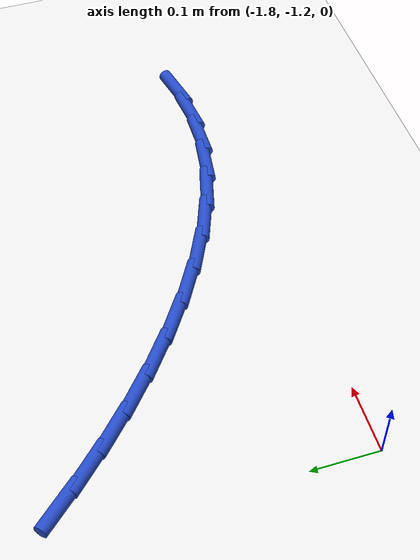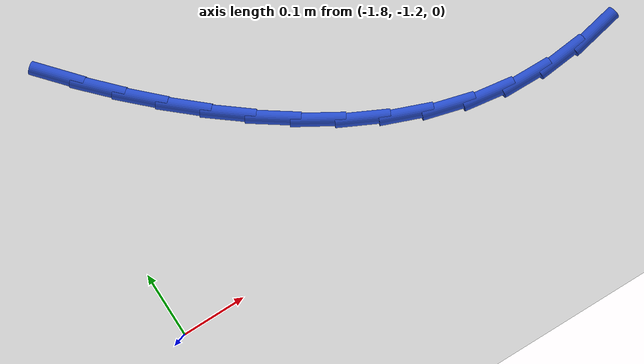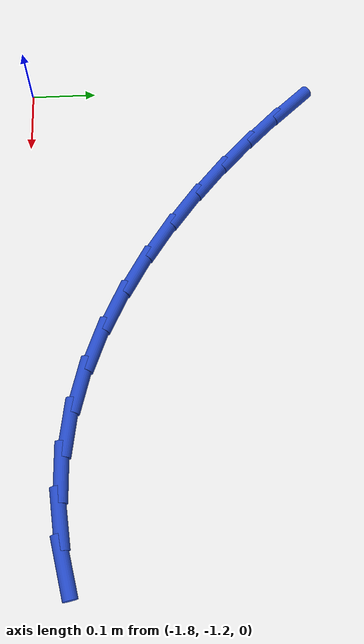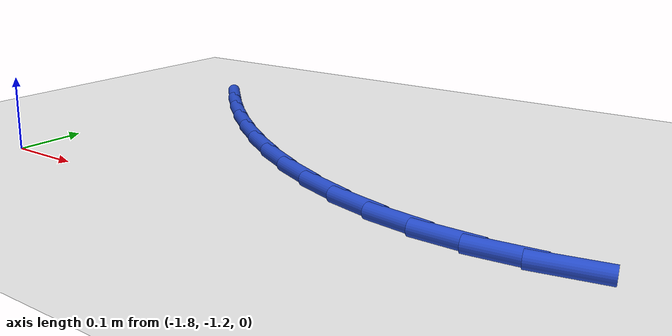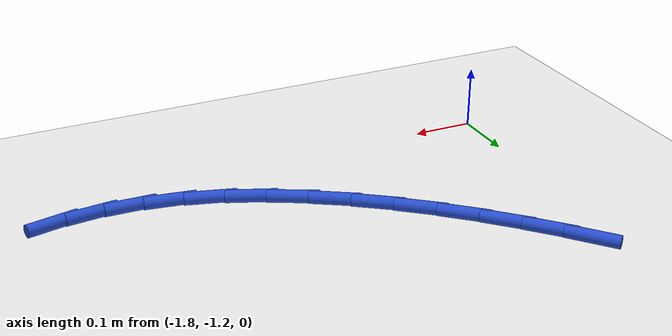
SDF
<sdf version="1.6">
 <world name="default">
  <model name="ground_plane">
   <static>1</static>
   <link name="link">
    <collision name="collision">
     <geometry><plane><normal>0 0 1</normal><size>100 100</size></plane></geometry>
     <surface><friction><ode><mu>100</mu><mu2>50</mu2></ode></friction></surface>
    </collision>
    <visual name="visual">
     <cast_shadows>0</cast_shadows>
     <geometry><plane><normal>0 0 1</normal><size>100 100</size></plane></geometry>
     <material>
      <script><uri>file://media/materials/scripts/gazebo.material</uri><name>Gazebo/WhiteGlow</name></script>
     </material>
    </visual>
   </link>
  </model>
  <model name="line">
   <link name="link_70">
    <pose>-1.7558672324694558 -0.7898591391423012 0.01 0 1.57 -0.8410504033575752</pose>
    <collision name="collision">
     <geometry><cylinder><radius>0.01</radius><length>0.08</length></cylinder></geometry>
    </collision>
    <visual name="visual">
     <material>
      <script><name>Gazebo/Blue</name><uri>file://media/materials/scripts/gazebo.material</uri></script>
     </material>
     <geometry><cylinder><radius>0.01</radius><length>0.08</length></cylinder></geometry>
    </visual>
   </link>
   <link name="link_71">
    <pose>-1.7152988470463604 -0.8352143055378127 0.01 0 1.57 -0.7982024522438588</pose>
    <collision name="collision">
     <geometry><cylinder><radius>0.01</radius><length>0.08</length></cylinder></geometry>
    </collision>
    <visual name="visual">
     <material>
      <script><name>Gazebo/Blue</name><uri>file://media/materials/scripts/gazebo.material</uri></script>
     </material>
     <geometry><cylinder><radius>0.01</radius><length>0.08</length></cylinder></geometry>
    </visual>
   </link>
   <link name="link_72">
    <pose>-1.6720990455000289 -0.8795348035259682 0.01 0 1.57 -0.755044106041957</pose>
    <collision name="collision">
     <geometry><cylinder><radius>0.01</radius><length>0.08</length></cylinder></geometry>
    </collision>
    <visual name="visual">
     <material>
      <script><name>Gazebo/Blue</name><uri>file://media/materials/scripts/gazebo.material</uri></script>
     </material>
     <geometry><cylinder><radius>0.01</radius><length>0.08</length></cylinder></geometry>
    </visual>
   </link>
   <link name="link_73">
    <pose>-1.6260576277375993 -0.922862667537821 0.01 0 1.57 -0.7087719637251629</pose>
    <collision name="collision">
     <geometry><cylinder><radius>0.01</radius><length>0.08</length></cylinder></geometry>
    </collision>
    <visual name="visual">
     <material>
      <script><name>Gazebo/Blue</name><uri>file://media/materials/scripts/gazebo.material</uri></script>
     </material>
     <geometry><cylinder><radius>0.01</radius><length>0.08</length></cylinder></geometry>
    </visual>
   </link>
   <link name="link_74">
    <pose>-1.5773787081410422 -0.9645997599390886 0.01 0 1.57 -0.6574295812166595</pose>
    <collision name="collision">
     <geometry><cylinder><radius>0.01</radius><length>0.08</length></cylinder></geometry>
    </collision>
    <visual name="visual">
     <material>
      <script><name>Gazebo/Blue</name><uri>file://media/materials/scripts/gazebo.material</uri></script>
     </material>
     <geometry><cylinder><radius>0.01</radius><length>0.08</length></cylinder></geometry>
    </visual>
   </link>
   <link name="link_75">
    <pose>-1.5263825082336118 -1.0039685418122795 0.01 0 1.57 -0.5995922659414893</pose>
    <collision name="collision">
     <geometry><cylinder><radius>0.01</radius><length>0.08</length></cylinder></geometry>
    </collision>
    <visual name="visual">
     <material>
      <script><name>Gazebo/Blue</name><uri>file://media/materials/scripts/gazebo.material</uri></script>
     </material>
     <geometry><cylinder><radius>0.01</radius><length>0.08</length></cylinder></geometry>
    </visual>
   </link>
   <link name="link_76">
    <pose>-1.4733892552893368 -1.0401914653541748 0.01 0 1.57 -0.533633227032158</pose>
    <collision name="collision">
     <geometry><cylinder><radius>0.01</radius><length>0.08</length></cylinder></geometry>
    </collision>
    <visual name="visual">
     <material>
      <script><name>Gazebo/Blue</name><uri>file://media/materials/scripts/gazebo.material</uri></script>
     </material>
     <geometry><cylinder><radius>0.01</radius><length>0.08</length></cylinder></geometry>
    </visual>
   </link>
   <link name="link_77">
    <pose>-1.4187191765822487 -1.0724909827615543 0.01 0 1.57 -0.4577075509438359</pose>
    <collision name="collision">
     <geometry><cylinder><radius>0.01</radius><length>0.08</length></cylinder></geometry>
    </collision>
    <visual name="visual">
     <material>
      <script><name>Gazebo/Blue</name><uri>file://media/materials/scripts/gazebo.material</uri></script>
     </material>
     <geometry><cylinder><radius>0.01</radius><length>0.08</length></cylinder></geometry>
    </visual>
   </link>
   <link name="link_78">
    <pose>-1.3626924993863756 -1.1000895462311988 0.01 0 1.57 -0.36980816359546337</pose>
    <collision name="collision">
     <geometry><cylinder><radius>0.01</radius><length>0.08</length></cylinder></geometry>
    </collision>
    <visual name="visual">
     <material>
      <script><name>Gazebo/Blue</name><uri>file://media/materials/scripts/gazebo.material</uri></script>
     </material>
     <geometry><cylinder><radius>0.01</radius><length>0.08</length></cylinder></geometry>
    </visual>
   </link>
   <link name="link_79">
    <pose>-1.3056294509757502 -1.1222096079598889 0.01 0 1.57 -0.26795962930607065</pose>
    <collision name="collision">
     <geometry><cylinder><radius>0.01</radius><length>0.08</length></cylinder></geometry>
    </collision>
    <visual name="visual">
     <material>
      <script><name>Gazebo/Blue</name><uri>file://media/materials/scripts/gazebo.material</uri></script>
     </material>
     <geometry><cylinder><radius>0.01</radius><length>0.08</length></cylinder></geometry>
    </visual>
   </link>
   <link name="link_80">
    <pose>-1.2478502586244005 -1.1380736201444046 0.01 0 1.57 -0.15064035018939062</pose>
    <collision name="collision">
     <geometry><cylinder><radius>0.01</radius><length>0.08</length></cylinder></geometry>
    </collision>
    <visual name="visual">
     <material>
      <script><name>Gazebo/Blue</name><uri>file://media/materials/scripts/gazebo.material</uri></script>
     </material>
     <geometry><cylinder><radius>0.01</radius><length>0.08</length></cylinder></geometry>
    </visual>
   </link>
   <link name="link_81">
    <pose>-1.1896751496063578 -1.1469040349815258 0.01 0 1.57 -0.021674809181649615</pose>
    <collision name="collision">
     <geometry><cylinder><radius>0.01</radius><length>0.08</length></cylinder></geometry>
    </collision>
    <visual name="visual">
     <material>
      <script><name>Gazebo/Blue</name><uri>file://media/materials/scripts/gazebo.material</uri></script>
     </material>
     <geometry><cylinder><radius>0.01</radius><length>0.08</length></cylinder></geometry>
    </visual>
   </link>
   <link name="link_82">
    <pose>-1.131386978919991 -1.1481676178408589 0.01 0 1.57 0.09947807261773688</pose>
    <collision name="collision">
     <geometry><cylinder><radius>0.01</radius><length>0.08</length></cylinder></geometry>
    </collision>
    <visual name="visual">
     <material>
      <script><name>Gazebo/Blue</name><uri>file://media/materials/scripts/gazebo.material</uri></script>
     </material>
     <geometry><cylinder><radius>0.01</radius><length>0.08</length></cylinder></geometry>
    </visual>
   </link>
   <link name="link_83">
    <pose>-1.0731125342891608 -1.1423513901597868 0.01 0 1.57 0.2057744617846401</pose>
    <collision name="collision">
     <geometry><cylinder><radius>0.01</radius><length>0.08</length></cylinder></geometry>
    </collision>
    <visual name="visual">
     <material>
      <script><name>Gazebo/Blue</name><uri>file://media/materials/scripts/gazebo.material</uri></script>
     </material>
     <geometry><cylinder><radius>0.01</radius><length>0.08</length></cylinder></geometry>
    </visual>
   </link>
  </model>
 </world>
</sdf>
